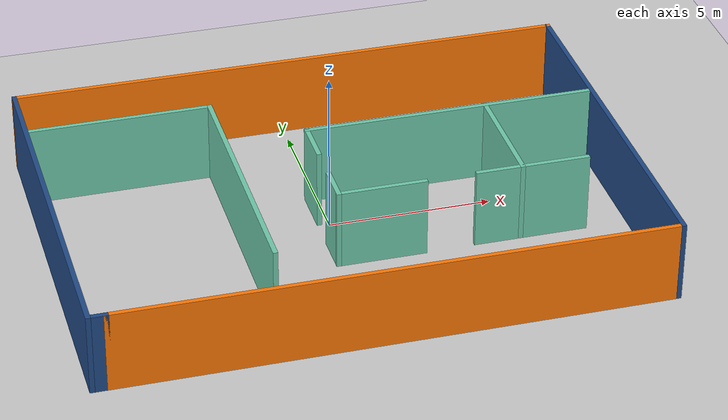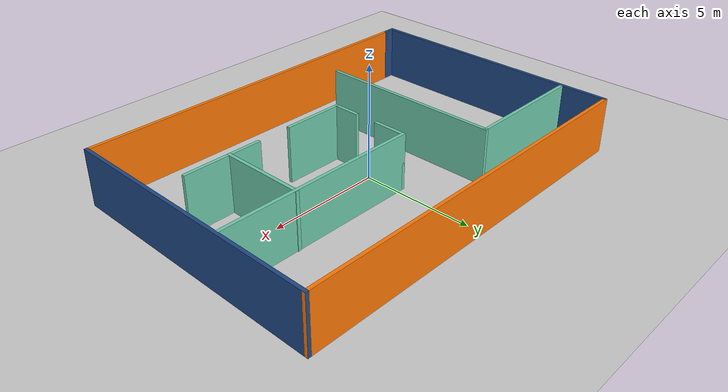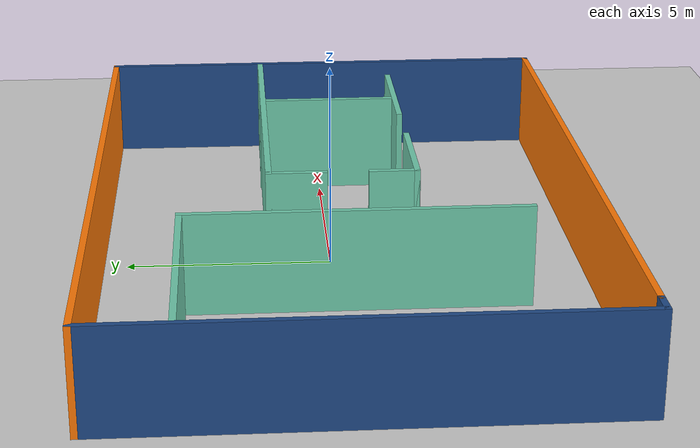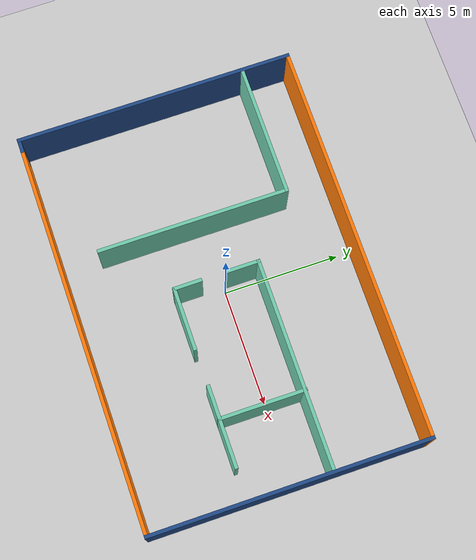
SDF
<sdf version="1.6">
 <world name="default">
  <light name="sun" type="directional">
   <pose>0 0 10 0 -0 0</pose>
   <diffuse>0.8 0.8 0.8 1</diffuse>
   <specular>0.2 0.2 0.2 1</specular>
   <attenuation>
    <range>1000</range>
    <constant>0.9</constant>
    <linear>0.01</linear>
    <quadratic>0.001</quadratic>
   </attenuation>
   <direction>-0.5 0.1 -0.9</direction>
   <spot><inner_angle>0</inner_angle><outer_angle>0</outer_angle><falloff>0</falloff></spot>
  </light>
  <model name="ground_plane">
   <static>1</static>
   <link name="link">
    <collision name="collision">
     <geometry><plane><normal>0 0 1</normal><size>100 100</size></plane></geometry>
     <surface>
      <contact><collide_bitmask>65535</collide_bitmask></contact>
      <friction><ode><mu>100</mu><mu2>50</mu2></ode></friction>
     </surface>
    </collision>
    <visual name="visual">
     <cast_shadows>0</cast_shadows>
     <geometry><plane><normal>0 0 1</normal><size>100 100</size></plane></geometry>
     <material>
      <script><uri>file://media/materials/scripts/gazebo.material</uri><name>Gazebo/Grey</name></script>
     </material>
    </visual>
   </link>
  </model>
  <gravity>0 0 -9.8</gravity>
  <magnetic_field>6e-06 2.3e-05 -4.2e-05</magnetic_field>
  <atmosphere type="adiabatic"/>
  <physics type="ode">
   <max_step_size>0.001</max_step_size>
   <real_time_factor>1</real_time_factor>
   <real_time_update_rate>1000</real_time_update_rate>
  </physics>
  <scene><ambient>0.4 0.4 0.4 1</ambient><background>0.7 0.7 0.7 1</background><shadows>1</shadows></scene>
  <spherical_coordinates>
   <surface_model>EARTH_WGS84</surface_model>
   <latitude_deg>0</latitude_deg>
   <longitude_deg>0</longitude_deg>
   <elevation>0</elevation>
   <heading_deg>0</heading_deg>
  </spherical_coordinates>
  <model name="Usmans">
   <pose>0.151705 -0.292657 0 0 -0 0</pose>
   <link name="Wall_11">
    <collision name="Wall_11_Collision">
     <geometry><box><size>3.5 0.15 2.5</size></box></geometry>
     <pose>0 0 1.25 0 -0 0</pose>
    </collision>
    <visual name="Wall_11_Visual">
     <pose>0 0 1.25 0 -0 0</pose>
     <geometry><box><size>3.5 0.15 2.5</size></box></geometry>
     <material>
      <script><uri>file://media/materials/scripts/gazebo.material</uri><name>Gazebo/Grey</name></script>
      <ambient>0.435294 0.796078 0.67451 1</ambient>
     </material>
     <meta><layer>0</layer></meta>
    </visual>
    <pose>5.46371 -1.77537 0 0 -0 3.14159</pose>
   </link>
   <link name="Wall_14">
    <collision name="Wall_14_Collision">
     <geometry><box><size>2.75 0.15 2.5</size></box></geometry>
     <pose>0 0 1.25 0 -0 0</pose>
    </collision>
    <visual name="Wall_14_Visual">
     <pose>0 0 1.25 0 -0 0</pose>
     <geometry><box><size>2.75 0.15 2.5</size></box></geometry>
     <material>
      <script><uri>file://media/materials/scripts/gazebo.material</uri><name>Gazebo/Grey</name></script>
      <ambient>0.435294 0.796078 0.67451 1</ambient>
     </material>
     <meta><layer>0</layer></meta>
    </visual>
    <pose>0.864476 -1.80197 0 0 -0 3.14159</pose>
   </link>
   <link name="Wall_16">
    <collision name="Wall_16_Collision">
     <geometry><box><size>9 0.15 2.5</size></box></geometry>
     <pose>0 0 1.25 0 -0 0</pose>
    </collision>
    <visual name="Wall_16_Visual">
     <pose>0 0 1.25 0 -0 0</pose>
     <geometry><box><size>9 0.15 2.5</size></box></geometry>
     <material>
      <script><uri>file://media/materials/scripts/gazebo.material</uri><name>Gazebo/Grey</name></script>
      <ambient>0.435294 0.796078 0.67451 1</ambient>
     </material>
     <meta><layer>0</layer></meta>
    </visual>
    <pose>3.98948 1.79803 0 0 -0 0</pose>
   </link>
   <link name="Wall_18">
    <collision name="Wall_18_Collision">
     <geometry><box><size>3.75 0.15 2.5</size></box></geometry>
     <pose>0 0 1.25 0 -0 0</pose>
    </collision>
    <visual name="Wall_18_Visual">
     <pose>0 0 1.25 0 -0 0</pose>
     <geometry><box><size>3.75 0.15 2.5</size></box></geometry>
     <material>
      <script><uri>file://media/materials/scripts/gazebo.material</uri><name>Gazebo/Grey</name></script>
      <ambient>0.435294 0.796078 0.67451 1</ambient>
     </material>
     <meta><layer>0</layer></meta>
    </visual>
    <pose>5.1437 0.024631 0 0 -0 1.5708</pose>
   </link>
   <link name="Wall_20">
    <collision name="Wall_20_Collision">
     <geometry><box><size>1.25 0.15 2.5</size></box></geometry>
     <pose>0 0 1.25 0 -0 0</pose>
    </collision>
    <visual name="Wall_20_Visual">
     <pose>0 0 1.25 0 -0 0</pose>
     <geometry><box><size>1.25 0.15 2.5</size></box></geometry>
     <material>
      <script><uri>file://media/materials/scripts/gazebo.material</uri><name>Gazebo/Grey</name></script>
      <ambient>0.435294 0.796078 0.67451 1</ambient>
     </material>
     <meta><layer>0</layer></meta>
    </visual>
    <pose>-0.435524 -1.25197 0 0 -0 1.5708</pose>
   </link>
   <link name="Wall_22">
    <collision name="Wall_22_Collision">
     <geometry><box><size>1.5 0.15 2.5</size></box></geometry>
     <pose>0 0 1.25 0 -0 0</pose>
    </collision>
    <visual name="Wall_22_Visual">
     <pose>0 0 1.25 0 -0 0</pose>
     <geometry><box><size>1.5 0.15 2.5</size></box></geometry>
     <material>
      <script><uri>file://media/materials/scripts/gazebo.material</uri><name>Gazebo/Grey</name></script>
      <ambient>0.435294 0.796078 0.67451 1</ambient>
     </material>
     <meta><layer>0</layer></meta>
    </visual>
    <pose>-0.435524 1.12303 0 0 -0 -1.5708</pose>
   </link>
   <link name="Wall_24">
    <collision name="Wall_24_Collision">
     <geometry><box><size>5.75 0.15 2.5</size></box></geometry>
     <pose>0 0 1.25 0 -0 0</pose>
    </collision>
    <visual name="Wall_24_Visual">
     <pose>0 0 1.25 0 -0 0</pose>
     <geometry><box><size>5.75 0.15 2.5</size></box></geometry>
     <material>
      <script><uri>file://media/materials/scripts/gazebo.material</uri><name>Gazebo/Grey</name></script>
      <ambient>0.435294 0.796078 0.67451 1</ambient>
     </material>
     <meta><layer>0</layer></meta>
    </visual>
    <pose>-5.7288 3.89047 0 0 -0 0</pose>
   </link>
   <link name="Wall_25">
    <collision name="Wall_25_Collision">
     <geometry><box><size>8.25 0.15 2.5</size></box></geometry>
     <pose>0 0 1.25 0 -0 0</pose>
    </collision>
    <visual name="Wall_25_Visual">
     <pose>0 0 1.25 0 -0 0</pose>
     <geometry><box><size>8.25 0.15 2.5</size></box></geometry>
     <material>
      <script><uri>file://media/materials/scripts/gazebo.material</uri><name>Gazebo/Grey</name></script>
      <ambient>0.435294 0.796078 0.67451 1</ambient>
     </material>
     <meta><layer>0</layer></meta>
    </visual>
    <pose>-2.9288 -0.159527 0 0 -0 -1.5708</pose>
   </link>
   <link name="Wall_5">
    <collision name="Wall_5_Collision">
     <geometry><box><size>16.75 0.15 2.5</size></box></geometry>
     <pose>0 0 1.25 0 -0 0</pose>
    </collision>
    <visual name="Wall_5_Visual">
     <pose>0 0 1.25 0 -0 0</pose>
     <geometry><box><size>16.75 0.15 2.5</size></box></geometry>
     <material>
      <script><uri>file://media/materials/scripts/gazebo.material</uri><name>Gazebo/Grey</name></script>
      <ambient>0.996078 0.47451 0.0196078 1</ambient>
     </material>
     <meta><layer>0</layer></meta>
    </visual>
    <pose>0.25 -5.925 0 0 -0 0</pose>
   </link>
   <link name="Wall_6">
    <collision name="Wall_6_Collision">
     <geometry><box><size>12 0.15 2.5</size></box></geometry>
     <pose>0 0 1.25 0 -0 0</pose>
    </collision>
    <visual name="Wall_6_Visual">
     <pose>0 0 1.25 0 -0 0</pose>
     <geometry><box><size>12 0.15 2.5</size></box></geometry>
     <material>
      <script><uri>file://media/materials/scripts/gazebo.material</uri><name>Gazebo/Grey</name></script>
      <ambient>0.12549 0.290196 0.529412 1</ambient>
     </material>
     <meta><layer>0</layer></meta>
    </visual>
    <pose>8.55 0 0 0 -0 1.5708</pose>
   </link>
   <link name="Wall_7">
    <collision name="Wall_7_Collision">
     <geometry><box><size>17.25 0.15 2.5</size></box></geometry>
     <pose>0 0 1.25 0 -0 0</pose>
    </collision>
    <visual name="Wall_7_Visual">
     <pose>0 0 1.25 0 -0 0</pose>
     <geometry><box><size>17.25 0.15 2.5</size></box></geometry>
     <material>
      <script><uri>file://media/materials/scripts/gazebo.material</uri><name>Gazebo/Grey</name></script>
      <ambient>0.996078 0.47451 0.0196078 1</ambient>
     </material>
     <meta><layer>0</layer></meta>
    </visual>
    <pose>-0 5.925 0 0 -0 3.14159</pose>
   </link>
   <link name="Wall_8">
    <collision name="Wall_8_Collision">
     <geometry><box><size>12 0.15 2.5</size></box></geometry>
     <pose>0 0 1.25 0 -0 0</pose>
    </collision>
    <visual name="Wall_8_Visual">
     <pose>0 0 1.25 0 -0 0</pose>
     <geometry><box><size>12 0.15 2.5</size></box></geometry>
     <material>
      <script><uri>file://media/materials/scripts/gazebo.material</uri><name>Gazebo/Grey</name></script>
      <ambient>0.12549 0.290196 0.529412 1</ambient>
     </material>
     <meta><layer>0</layer></meta>
    </visual>
    <pose>-8.55 0 0 0 -0 -1.5708</pose>
   </link>
   <link name="Wall_9">
    <collision name="Wall_9_Collision">
     <geometry><box><size>0.65 0.15 2.5</size></box></geometry>
     <pose>0 0 1.25 0 -0 0</pose>
    </collision>
    <visual name="Wall_9_Visual">
     <pose>0 0 1.25 0 -0 0</pose>
     <geometry><box><size>0.65 0.15 2.5</size></box></geometry>
     <material>
      <script><uri>file://media/materials/scripts/gazebo.material</uri><name>Gazebo/Grey</name></script>
      <ambient>0.12549 0.290196 0.529412 1</ambient>
     </material>
     <meta><layer>0</layer></meta>
    </visual>
    <pose>-8.3 -5.925 0 0 -0 0</pose>
   </link>
   <static>1</static>
  </model>
 </world>
</sdf>
